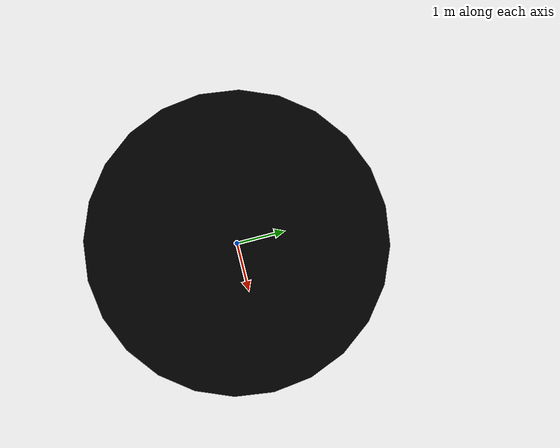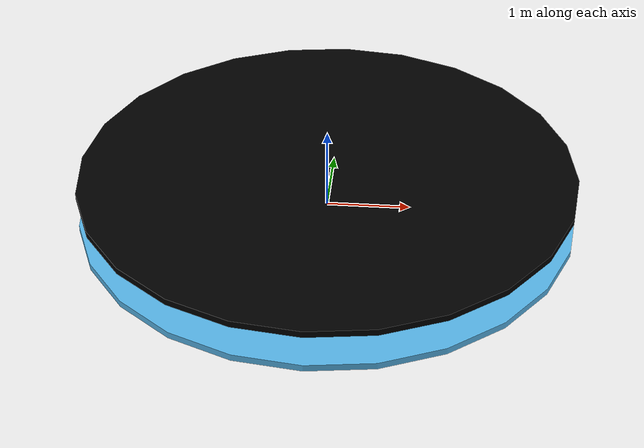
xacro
<?xml version="1.0"?>

<robot xmlns:xacro="http://ros.org/wiki/xacro" name="conveyor">

    <xacro:include filename="$(find sema_description)/urdf/macro/conveyor_belt_macro.xacro"/>
    <xacro:conveyor_belt name="cb/" prefix="sema/" radius="3.0"/>

    <link name="world"/>

    <joint name="sema/cb/world_joint" type="fixed">
        <origin xyz="0 0 0" rpy="0 0 0"/>
        <parent link="world"/>
        <child link="sema/cb/base_link"/>
    </joint>

</robot>

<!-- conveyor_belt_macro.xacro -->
<robot xmlns:xacro="http://ros.org/wiki/xacro">
   <xacro:macro name="conveyor_belt"
    params="
    name prefix:=sema/
    radius:=3.0
    length:=0.08
    mass:=100.0
    heigh_world:=0.46">

    <link name="${prefix}${name}base_link"/>

    <joint name="${prefix}${name}base_joint" type="fixed">
        <origin xyz="0 0 0" rpy="0 0 0"/>
        <parent link="${prefix}${name}base_link" />
        <child link="${prefix}${name}dummy_link" />
    </joint>

    <link name="${prefix}${name}dummy_link">
        <visual>
            <origin xyz="0 0 0" rpy="0 0 0"/>
            <geometry>
                <cylinder length="${length}" radius="${radius}"/>
            </geometry>
        </visual>

        <collision>
            <origin xyz="0 0 0" rpy="0 0 0"/>
            <geometry>
                <cylinder length="${length}" radius="${radius}"/>
            </geometry>
        </collision>

        <inertial>
            <mass value="${mass}"/>
            <inertia ixx="${(mass / 12) * (3 * radius * radius + length * length) }" ixy="0.0" ixz="0.0" iyy="${(mass / 12) * (3 * radius * radius + length * length) }" iyz="0.0" izz="${(mass / 12) * (radius * radius)}"/>
        </inertial>
    </link>

    <link name="${prefix}${name}conveyor_link">
        <visual>
            <origin xyz="0 0 0" rpy="0 0 0"/>
            <geometry>
                <cylinder length="${length}" radius="${radius}"/>
            </geometry>
            <material name="Black">
                <color rgba="0 0.0 0.0 1.0"/>
            </material>
        </visual>

        <collision>
            <origin xyz="0 0 0" rpy="0 0 0"/>
            <geometry>
                <cylinder length="${length}" radius="${radius}"/>
            </geometry>
        </collision>

        <inertial>
            <mass value="${mass}"/>
            <inertia ixx="${(mass / 12) * (3 * radius * radius + length * length) }" ixy="0.0" ixz="0.0" iyy="${(mass / 12) * (3 * radius * radius + length * length) }" iyz="0.0" izz="${(mass / 12) * (radius * radius)}"/>
        </inertial>
    </link>

    <gazebo reference="${prefix}${name}conveyor_link">
        <material>Gazebo/Black</material>
        <mu1>1000.0</mu1>
        <mu2>1000.0</mu2>
    </gazebo>

    <joint name="${prefix}${name}dummy_joint" type="continuous">
        <origin xyz="0 0 ${heigh_world}" rpy="0 0 0"/>
        <parent link="${prefix}${name}base_link" />
        <child link="${prefix}${name}conveyor_link" />
        <axis xyz="0 0 1"/>
        <dynamics damping="0.7"/>
    </joint>

    <transmission name="${prefix}${name}trans">
        <type>transmission_interface/SimpleTransmission</type>

        <joint name="${prefix}${name}dummy_joint">
            <hardwareInterface>hardware_interface/VelocityJointInterface</hardwareInterface>
        </joint>

        <actuator name="${prefix}${name}motor">
            <mechanicalReduction>1</mechanicalReduction>
            <hardwareInterface>VelocityJointInterface</hardwareInterface>
        </actuator>
    </transmission>

   </xacro:macro>
</robot>
